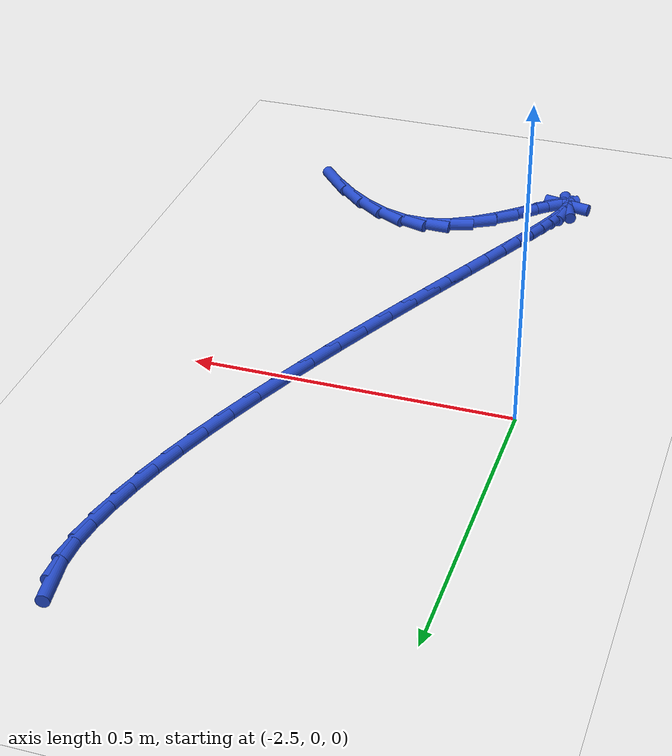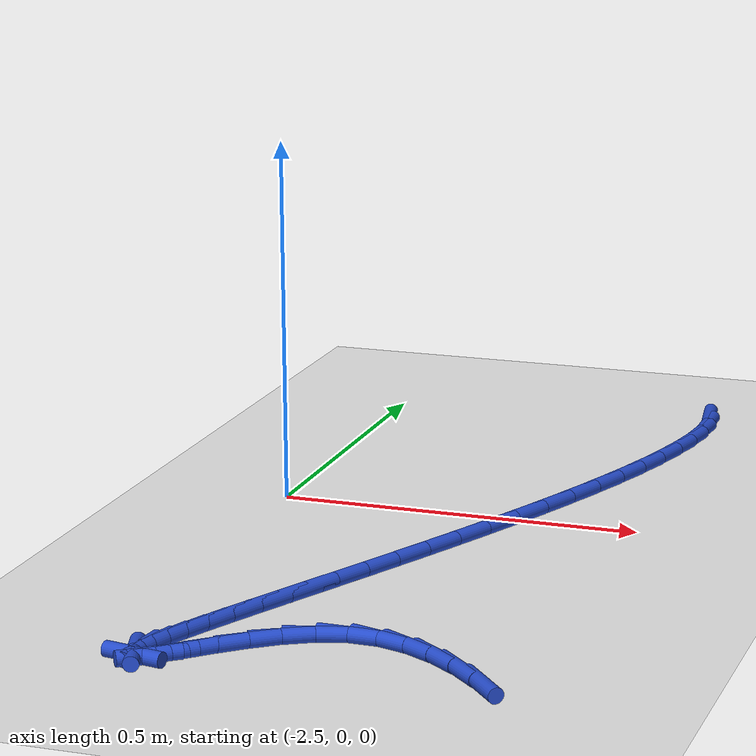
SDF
<sdf version="1.6">
 <world name="default">
  <model name="ground_plane">
   <static>1</static>
   <link name="link">
    <collision name="collision">
     <geometry><plane><normal>0 0 1</normal><size>100 100</size></plane></geometry>
     <surface><friction><ode><mu>100</mu><mu2>50</mu2></ode></friction></surface>
    </collision>
    <visual name="visual">
     <cast_shadows>0</cast_shadows>
     <geometry><plane><normal>0 0 1</normal><size>100 100</size></plane></geometry>
     <material>
      <script><uri>file://media/materials/scripts/gazebo.material</uri><name>Gazebo/WhiteGlow</name></script>
     </material>
    </visual>
   </link>
  </model>
  <model name="line">
   <link name="link_106">
    <pose>-2.0238691819637737 0.5379474454272443 0.01 0 1.57 -1.415771396161266</pose>
    <collision name="collision">
     <geometry><cylinder><radius>0.01</radius><length>0.08</length></cylinder></geometry>
    </collision>
    <visual name="visual">
     <material>
      <script><name>Gazebo/Blue</name><uri>file://media/materials/scripts/gazebo.material</uri></script>
     </material>
     <geometry><cylinder><radius>0.01</radius><length>0.08</length></cylinder></geometry>
    </visual>
   </link>
   <link name="link_107">
    <pose>-2.018008869909346 0.5004483785955179 0.01 0 1.57 -1.5679373980924662</pose>
    <collision name="collision">
     <geometry><cylinder><radius>0.01</radius><length>0.08</length></cylinder></geometry>
    </collision>
    <visual name="visual">
     <material>
      <script><name>Gazebo/Blue</name><uri>file://media/materials/scripts/gazebo.material</uri></script>
     </material>
     <geometry><cylinder><radius>0.01</radius><length>0.08</length></cylinder></geometry>
    </visual>
   </link>
   <link name="link_108">
    <pose>-2.0178922306809084 0.45965026056072833 0.01 0 1.57 1.464122157222107</pose>
    <collision name="collision">
     <geometry><cylinder><radius>0.01</radius><length>0.08</length></cylinder></geometry>
    </collision>
    <visual name="visual">
     <material>
      <script><name>Gazebo/Blue</name><uri>file://media/materials/scripts/gazebo.material</uri></script>
     </material>
     <geometry><cylinder><radius>0.01</radius><length>0.08</length></cylinder></geometry>
    </visual>
   </link>
   <link name="link_109">
    <pose>-2.0225765418209987 0.4159046239021501 0.01 0 1.57 1.3885043725971664</pose>
    <collision name="collision">
     <geometry><cylinder><radius>0.01</radius><length>0.08</length></cylinder></geometry>
    </collision>
    <visual name="visual">
     <material>
      <script><name>Gazebo/Blue</name><uri>file://media/materials/scripts/gazebo.material</uri></script>
     </material>
     <geometry><cylinder><radius>0.01</radius><length>0.08</length></cylinder></geometry>
    </visual>
   </link>
   <link name="link_110">
    <pose>-2.0311190809495914 0.369563001197367 0.01 0 1.57 1.3370445836096627</pose>
    <collision name="collision">
     <geometry><cylinder><radius>0.01</radius><length>0.08</length></cylinder></geometry>
    </collision>
    <visual name="visual">
     <material>
      <script><name>Gazebo/Blue</name><uri>file://media/materials/scripts/gazebo.material</uri></script>
     </material>
     <geometry><cylinder><radius>0.01</radius><length>0.08</length></cylinder></geometry>
    </visual>
   </link>
   <link name="link_111">
    <pose>-2.042688211637007 0.3209744986953176 0.01 0 1.57 1.2967253812434443</pose>
    <collision name="collision">
     <geometry><cylinder><radius>0.01</radius><length>0.08</length></cylinder></geometry>
    </collision>
    <visual name="visual">
     <material>
      <script><name>Gazebo/Blue</name><uri>file://media/materials/scripts/gazebo.material</uri></script>
     </material>
     <geometry><cylinder><radius>0.01</radius><length>0.08</length></cylinder></geometry>
    </visual>
   </link>
   <link name="link_112">
    <pose>-2.056884875672353 0.2704787743130833 0.01 0 1.57 1.2633698594852578</pose>
    <collision name="collision">
     <geometry><cylinder><radius>0.01</radius><length>0.08</length></cylinder></geometry>
    </collision>
    <visual name="visual">
     <material>
      <script><name>Gazebo/Blue</name><uri>file://media/materials/scripts/gazebo.material</uri></script>
     </material>
     <geometry><cylinder><radius>0.01</radius><length>0.08</length></cylinder></geometry>
    </visual>
   </link>
   <link name="link_113">
    <pose>-2.073415295481565 0.21841318643819985 0.01 0 1.57 1.2355251472396303</pose>
    <collision name="collision">
     <geometry><cylinder><radius>0.01</radius><length>0.08</length></cylinder></geometry>
    </collision>
    <visual name="visual">
     <material>
      <script><name>Gazebo/Blue</name><uri>file://media/materials/scripts/gazebo.material</uri></script>
     </material>
     <geometry><cylinder><radius>0.01</radius><length>0.08</length></cylinder></geometry>
    </visual>
   </link>
   <link name="link_114">
    <pose>-2.091985693490577 0.1651150934582033 0.01 0 1.57 1.2121205613198731</pose>
    <collision name="collision">
     <geometry><cylinder><radius>0.01</radius><length>0.08</length></cylinder></geometry>
    </collision>
    <visual name="visual">
     <material>
      <script><name>Gazebo/Blue</name><uri>file://media/materials/scripts/gazebo.material</uri></script>
     </material>
     <geometry><cylinder><radius>0.01</radius><length>0.08</length></cylinder></geometry>
    </visual>
   </link>
   <link name="link_115">
    <pose>-2.1123022921253263 0.11092185376062938 0.01 0 1.57 1.1923604217838042</pose>
    <collision name="collision">
     <geometry><cylinder><radius>0.01</radius><length>0.08</length></cylinder></geometry>
    </collision>
    <visual name="visual">
     <material>
      <script><name>Gazebo/Blue</name><uri>file://media/materials/scripts/gazebo.material</uri></script>
     </material>
     <geometry><cylinder><radius>0.01</radius><length>0.08</length></cylinder></geometry>
    </visual>
   </link>
   <link name="link_116">
    <pose>-2.1340713138117464 0.05617082573301409 0.01 0 1.57 1.1756504123319085</pose>
    <collision name="collision">
     <geometry><cylinder><radius>0.01</radius><length>0.08</length></cylinder></geometry>
    </collision>
    <visual name="visual">
     <material>
      <script><name>Gazebo/Blue</name><uri>file://media/materials/scripts/gazebo.material</uri></script>
     </material>
     <geometry><cylinder><radius>0.01</radius><length>0.08</length></cylinder></geometry>
    </visual>
   </link>
   <link name="link_117">
    <pose>-2.1569989809757733 0.0011993677628932527 0.01 0 1.57 1.1615472246743064</pose>
    <collision name="collision">
     <geometry><cylinder><radius>0.01</radius><length>0.08</length></cylinder></geometry>
    </collision>
    <visual name="visual">
     <material>
      <script><name>Gazebo/Blue</name><uri>file://media/materials/scripts/gazebo.material</uri></script>
     </material>
     <geometry><cylinder><radius>0.01</radius><length>0.08</length></cylinder></geometry>
    </visual>
   </link>
   <link name="link_118">
    <pose>-2.180791516043342 -0.05365516176219724 0.01 0 1.57 1.1497244812507654</pose>
    <collision name="collision">
     <geometry><cylinder><radius>0.01</radius><length>0.08</length></cylinder></geometry>
    </collision>
    <visual name="visual">
     <material>
      <script><name>Gazebo/Blue</name><uri>file://media/materials/scripts/gazebo.material</uri></script>
     </material>
     <geometry><cylinder><radius>0.01</radius><length>0.08</length></cylinder></geometry>
    </visual>
   </link>
   <link name="link_119">
    <pose>-2.205155141440387 -0.10805540445472159 0.01 0 1.57 1.1399504052973863</pose>
    <collision name="collision">
     <geometry><cylinder><radius>0.01</radius><length>0.08</length></cylinder></geometry>
    </collision>
    <visual name="visual">
     <material>
      <script><name>Gazebo/Blue</name><uri>file://media/materials/scripts/gazebo.material</uri></script>
     </material>
     <geometry><cylinder><radius>0.01</radius><length>0.08</length></cylinder></geometry>
    </visual>
   </link>
   <link name="link_120">
    <pose>-2.229796079592844 -0.1616640019271431 0.01 0 1.57 1.1320745308175812</pose>
    <collision name="collision">
     <geometry><cylinder><radius>0.01</radius><length>0.08</length></cylinder></geometry>
    </collision>
    <visual name="visual">
     <material>
      <script><name>Gazebo/Blue</name><uri>file://media/materials/scripts/gazebo.material</uri></script>
     </material>
     <geometry><cylinder><radius>0.01</radius><length>0.08</length></cylinder></geometry>
    </visual>
   </link>
   <link name="link_121">
    <pose>-2.25442055292665 -0.21414359579192738 0.01 0 1.57 1.126022183931939</pose>
    <collision name="collision">
     <geometry><cylinder><radius>0.01</radius><length>0.08</length></cylinder></geometry>
    </collision>
    <visual name="visual">
     <material>
      <script><name>Gazebo/Blue</name><uri>file://media/materials/scripts/gazebo.material</uri></script>
     </material>
     <geometry><cylinder><radius>0.01</radius><length>0.08</length></cylinder></geometry>
    </visual>
   </link>
   <link name="link_122">
    <pose>-2.2787347838677374 -0.2651568276615378 0.01 0 1.57 1.1217968206177842</pose>
    <collision name="collision">
     <geometry><cylinder><radius>0.01</radius><length>0.08</length></cylinder></geometry>
    </collision>
    <visual name="visual">
     <material>
      <script><name>Gazebo/Blue</name><uri>file://media/materials/scripts/gazebo.material</uri></script>
     </material>
     <geometry><cylinder><radius>0.01</radius><length>0.08</length></cylinder></geometry>
    </visual>
   </link>
   <link name="link_123">
    <pose>-2.302444994842043 -0.3143663391484384 0.01 0 1.57 1.1194919536757622</pose>
    <collision name="collision">
     <geometry><cylinder><radius>0.01</radius><length>0.08</length></cylinder></geometry>
    </collision>
    <visual name="visual">
     <material>
      <script><name>Gazebo/Blue</name><uri>file://media/materials/scripts/gazebo.material</uri></script>
     </material>
     <geometry><cylinder><radius>0.01</radius><length>0.08</length></cylinder></geometry>
    </visual>
   </link>
   <link name="link_124">
    <pose>-2.325257408275501 -0.3614347718650936 0.01 0 1.57 1.119316969431715</pose>
    <collision name="collision">
     <geometry><cylinder><radius>0.01</radius><length>0.08</length></cylinder></geometry>
    </collision>
    <visual name="visual">
     <material>
      <script><name>Gazebo/Blue</name><uri>file://media/materials/scripts/gazebo.material</uri></script>
     </material>
     <geometry><cylinder><radius>0.01</radius><length>0.08</length></cylinder></geometry>
    </visual>
   </link>
   <link name="link_125">
    <pose>-2.346878246594047 -0.40602476742396726 0.01 0 1.57 1.121645892867978</pose>
    <collision name="collision">
     <geometry><cylinder><radius>0.01</radius><length>0.08</length></cylinder></geometry>
    </collision>
    <visual name="visual">
     <material>
      <script><name>Gazebo/Blue</name><uri>file://media/materials/scripts/gazebo.material</uri></script>
     </material>
     <geometry><cylinder><radius>0.01</radius><length>0.08</length></cylinder></geometry>
    </visual>
   </link>
   <link name="link_126">
    <pose>-2.3670137322236164 -0.4477989674375234 0.01 0 1.57 1.1271080579199941</pose>
    <collision name="collision">
     <geometry><cylinder><radius>0.01</radius><length>0.08</length></cylinder></geometry>
    </collision>
    <visual name="visual">
     <material>
      <script><name>Gazebo/Blue</name><uri>file://media/materials/scripts/gazebo.material</uri></script>
     </material>
     <geometry><cylinder><radius>0.01</radius><length>0.08</length></cylinder></geometry>
    </visual>
   </link>
   <link name="link_127">
    <pose>-2.385370087590146 -0.4864200135182266 0.01 0 1.57 1.1367622554276369</pose>
    <collision name="collision">
     <geometry><cylinder><radius>0.01</radius><length>0.08</length></cylinder></geometry>
    </collision>
    <visual name="visual">
     <material>
      <script><name>Gazebo/Blue</name><uri>file://media/materials/scripts/gazebo.material</uri></script>
     </material>
     <geometry><cylinder><radius>0.01</radius><length>0.08</length></cylinder></geometry>
    </visual>
   </link>
   <link name="link_128">
    <pose>-2.4016535351195674 -0.5215505472785403 0.01 0 1.57 1.152452827313036</pose>
    <collision name="collision">
     <geometry><cylinder><radius>0.01</radius><length>0.08</length></cylinder></geometry>
    </collision>
    <visual name="visual">
     <material>
      <script><name>Gazebo/Blue</name><uri>file://media/materials/scripts/gazebo.material</uri></script>
     </material>
     <geometry><cylinder><radius>0.01</radius><length>0.08</length></cylinder></geometry>
    </visual>
   </link>
   <link name="link_129">
    <pose>-2.415570297237819 -0.5528532103309293 0.01 0 1.57 1.1776064914661024</pose>
    <collision name="collision">
     <geometry><cylinder><radius>0.01</radius><length>0.08</length></cylinder></geometry>
    </collision>
    <visual name="visual">
     <material>
      <script><name>Gazebo/Blue</name><uri>file://media/materials/scripts/gazebo.material</uri></script>
     </material>
     <geometry><cylinder><radius>0.01</radius><length>0.08</length></cylinder></geometry>
    </visual>
   </link>
   <link name="link_130">
    <pose>-2.4268265963708338 -0.5799906442878574 0.01 0 1.57 1.219249703543497</pose>
    <collision name="collision">
     <geometry><cylinder><radius>0.01</radius><length>0.08</length></cylinder></geometry>
    </collision>
    <visual name="visual">
     <material>
      <script><name>Gazebo/Blue</name><uri>file://media/materials/scripts/gazebo.material</uri></script>
     </material>
     <geometry><cylinder><radius>0.01</radius><length>0.08</length></cylinder></geometry>
    </visual>
   </link>
   <link name="link_131">
    <pose>-2.4351286549445486 -0.6026254907617886 0.01 0 1.57 1.294067278945593</pose>
    <collision name="collision">
     <geometry><cylinder><radius>0.01</radius><length>0.08</length></cylinder></geometry>
    </collision>
    <visual name="visual">
     <material>
      <script><name>Gazebo/Blue</name><uri>file://media/materials/scripts/gazebo.material</uri></script>
     </material>
     <geometry><cylinder><radius>0.01</radius><length>0.08</length></cylinder></geometry>
    </visual>
   </link>
   <link name="link_132">
    <pose>-2.440182695384898 -0.6204203913651873 0.01 0 1.57 1.4515132573999905</pose>
    <collision name="collision">
     <geometry><cylinder><radius>0.01</radius><length>0.08</length></cylinder></geometry>
    </collision>
    <visual name="visual">
     <material>
      <script><name>Gazebo/Blue</name><uri>file://media/materials/scripts/gazebo.material</uri></script>
     </material>
     <geometry><cylinder><radius>0.01</radius><length>0.08</length></cylinder></geometry>
    </visual>
   </link>
   <link name="link_133">
    <pose>-2.4416949401178165 -0.6330379877105173 0.01 0 1.57 -1.2546714461505855</pose>
    <collision name="collision">
     <geometry><cylinder><radius>0.01</radius><length>0.08</length></cylinder></geometry>
    </collision>
    <visual name="visual">
     <material>
      <script><name>Gazebo/Blue</name><uri>file://media/materials/scripts/gazebo.material</uri></script>
     </material>
     <geometry><cylinder><radius>0.01</radius><length>0.08</length></cylinder></geometry>
    </visual>
   </link>
   <link name="link_134">
    <pose>-2.43937161156924 -0.640140921410243 0.01 0 1.57 -0.19148424120966676</pose>
    <collision name="collision">
     <geometry><cylinder><radius>0.01</radius><length>0.08</length></cylinder></geometry>
    </collision>
    <visual name="visual">
     <material>
      <script><name>Gazebo/Blue</name><uri>file://media/materials/scripts/gazebo.material</uri></script>
     </material>
     <geometry><cylinder><radius>0.01</radius><length>0.08</length></cylinder></geometry>
    </visual>
   </link>
   <link name="link_136">
    <pose>-2.4220431243313434 -0.6364533673227377 0.01 0 1.57 0.6340216290204748</pose>
    <collision name="collision">
     <geometry><cylinder><radius>0.01</radius><length>0.08</length></cylinder></geometry>
    </collision>
    <visual name="visual">
     <material>
      <script><name>Gazebo/Blue</name><uri>file://media/materials/scripts/gazebo.material</uri></script>
     </material>
     <geometry><cylinder><radius>0.01</radius><length>0.08</length></cylinder></geometry>
    </visual>
   </link>
   <link name="link_137">
    <pose>-2.406450410493894 -0.6249881627604351 0.01 0 1.57 0.7263800510748912</pose>
    <collision name="collision">
     <geometry><cylinder><radius>0.01</radius><length>0.08</length></cylinder></geometry>
    </collision>
    <visual name="visual">
     <material>
      <script><name>Gazebo/Blue</name><uri>file://media/materials/scripts/gazebo.material</uri></script>
     </material>
     <geometry><cylinder><radius>0.01</radius><length>0.08</length></cylinder></geometry>
    </visual>
   </link>
   <link name="link_138">
    <pose>-2.3858554429869003 -0.6066911926937794 0.01 0 1.57 0.7530874587236651</pose>
    <collision name="collision">
     <geometry><cylinder><radius>0.01</radius><length>0.08</length></cylinder></geometry>
    </collision>
    <visual name="visual">
     <material>
      <script><name>Gazebo/Blue</name><uri>file://media/materials/scripts/gazebo.material</uri></script>
     </material>
     <geometry><cylinder><radius>0.01</radius><length>0.08</length></cylinder></geometry>
    </visual>
   </link>
   <link name="link_139">
    <pose>-2.360377296715285 -0.5828084856188112 0.01 0 1.57 0.7199633399029496</pose>
    <collision name="collision">
     <geometry><cylinder><radius>0.01</radius><length>0.08</length></cylinder></geometry>
    </collision>
    <visual name="visual">
     <material>
      <script><name>Gazebo/Blue</name><uri>file://media/materials/scripts/gazebo.material</uri></script>
     </material>
     <geometry><cylinder><radius>0.01</radius><length>0.08</length></cylinder></geometry>
    </visual>
   </link>
   <link name="link_140">
    <pose>-2.330709670018003 -0.5567898867814987 0.01 0 1.57 0.6376198146502803</pose>
    <collision name="collision">
     <geometry><cylinder><radius>0.01</radius><length>0.08</length></cylinder></geometry>
    </collision>
    <visual name="visual">
     <material>
      <script><name>Gazebo/Blue</name><uri>file://media/materials/scripts/gazebo.material</uri></script>
     </material>
     <geometry><cylinder><radius>0.01</radius><length>0.08</length></cylinder></geometry>
    </visual>
   </link>
   <link name="link_141">
    <pose>-2.297590053369937 -0.5322531946245576 0.01 0 1.57 0.4970016869447821</pose>
    <collision name="collision">
     <geometry><cylinder><radius>0.01</radius><length>0.08</length></cylinder></geometry>
    </collision>
    <visual name="visual">
     <material>
      <script><name>Gazebo/Blue</name><uri>file://media/materials/scripts/gazebo.material</uri></script>
     </material>
     <geometry><cylinder><radius>0.01</radius><length>0.08</length></cylinder></geometry>
    </visual>
   </link>
   <link name="link_142">
    <pose>-2.26175593724597 -0.5128162075907046 0.01 0 1.57 0.27625201598956173</pose>
    <collision name="collision">
     <geometry><cylinder><radius>0.01</radius><length>0.08</length></cylinder></geometry>
    </collision>
    <visual name="visual">
     <material>
      <script><name>Gazebo/Blue</name><uri>file://media/materials/scripts/gazebo.material</uri></script>
     </material>
     <geometry><cylinder><radius>0.01</radius><length>0.08</length></cylinder></geometry>
    </visual>
   </link>
   <link name="link_143">
    <pose>-2.2239448121209837 -0.5020967241226553 0.01 0 1.57 -0.02082665257040265</pose>
    <collision name="collision">
     <geometry><cylinder><radius>0.01</radius><length>0.08</length></cylinder></geometry>
    </collision>
    <visual name="visual">
     <material>
      <script><name>Gazebo/Blue</name><uri>file://media/materials/scripts/gazebo.material</uri></script>
     </material>
     <geometry><cylinder><radius>0.01</radius><length>0.08</length></cylinder></geometry>
    </visual>
   </link>
   <link name="link_144">
    <pose>-2.1848637112844873 -0.5029107703326167 0.01 0 1.57 -0.2891647042359057</pose>
    <collision name="collision">
     <geometry><cylinder><radius>0.01</radius><length>0.08</length></cylinder></geometry>
    </collision>
    <visual name="visual">
     <material>
      <script><name>Gazebo/Blue</name><uri>file://media/materials/scripts/gazebo.material</uri></script>
     </material>
     <geometry><cylinder><radius>0.01</radius><length>0.08</length></cylinder></geometry>
    </visual>
   </link>
   <link name="link_145">
    <pose>-2.145093105123784 -0.5147426582621835 0.01 0 1.57 -0.49350237221997356</pose>
    <collision name="collision">
     <geometry><cylinder><radius>0.01</radius><length>0.08</length></cylinder></geometry>
    </collision>
    <visual name="visual">
     <material>
      <script><name>Gazebo/Blue</name><uri>file://media/materials/scripts/gazebo.material</uri></script>
     </material>
     <geometry><cylinder><radius>0.01</radius><length>0.08</length></cylinder></geometry>
    </visual>
   </link>
   <link name="link_146">
    <pose>-2.105180594129328 -0.5362114140286485 0.01 0 1.57 -0.6450308163117217</pose>
    <collision name="collision">
     <geometry><cylinder><radius>0.01</radius><length>0.08</length></cylinder></geometry>
    </collision>
    <visual name="visual">
     <material>
      <script><name>Gazebo/Blue</name><uri>file://media/materials/scripts/gazebo.material</uri></script>
     </material>
     <geometry><cylinder><radius>0.01</radius><length>0.08</length></cylinder></geometry>
    </visual>
   </link>
   <link name="link_147">
    <pose>-2.065673778726649 -0.5659360620401068 0.01 0 1.57 -0.7594043582947744</pose>
    <collision name="collision">
     <geometry><cylinder><radius>0.01</radius><length>0.08</length></cylinder></geometry>
    </collision>
    <visual name="visual">
     <material>
      <script><name>Gazebo/Blue</name><uri>file://media/materials/scripts/gazebo.material</uri></script>
     </material>
     <geometry><cylinder><radius>0.01</radius><length>0.08</length></cylinder></geometry>
    </visual>
   </link>
   <link name="link_148">
    <pose>-2.0271202593412747 -0.6025356267046543 0.01 0 1.57 -0.8490030832985077</pose>
    <collision name="collision">
     <geometry><cylinder><radius>0.01</radius><length>0.08</length></cylinder></geometry>
    </collision>
    <visual name="visual">
     <material>
      <script><name>Gazebo/Blue</name><uri>file://media/materials/scripts/gazebo.material</uri></script>
     </material>
     <geometry><cylinder><radius>0.01</radius><length>0.08</length></cylinder></geometry>
    </visual>
   </link>
  </model>
 </world>
</sdf>
